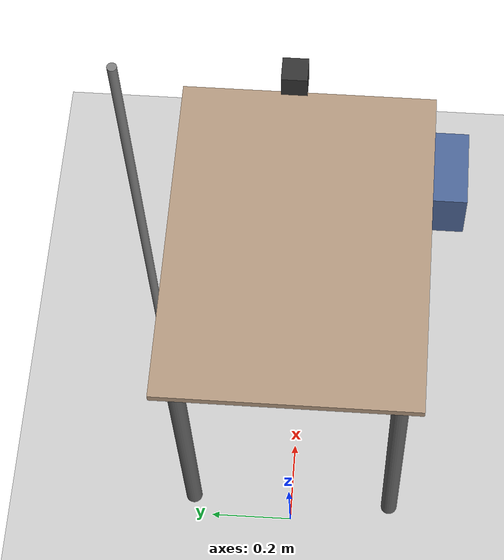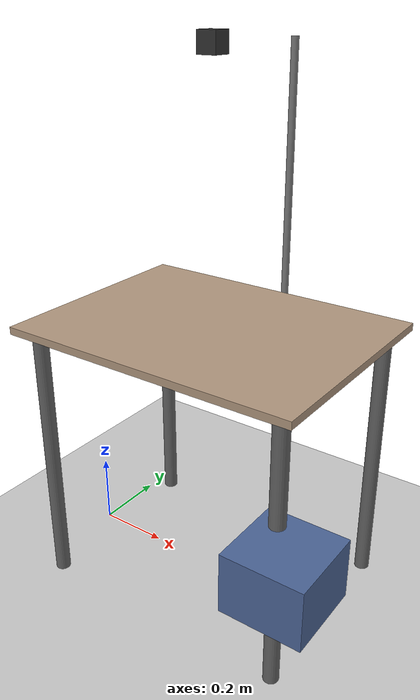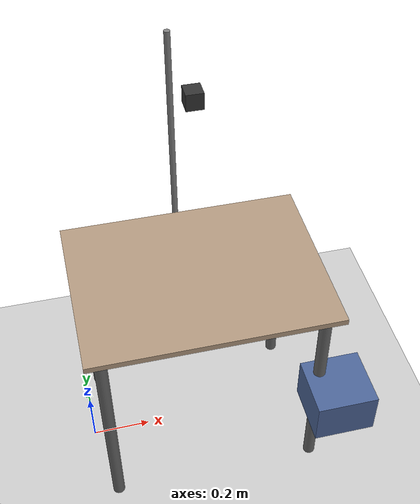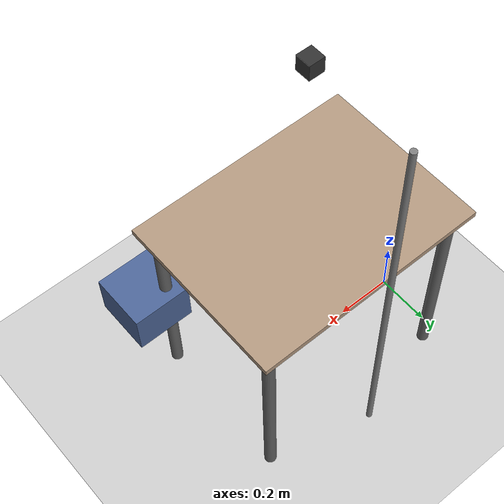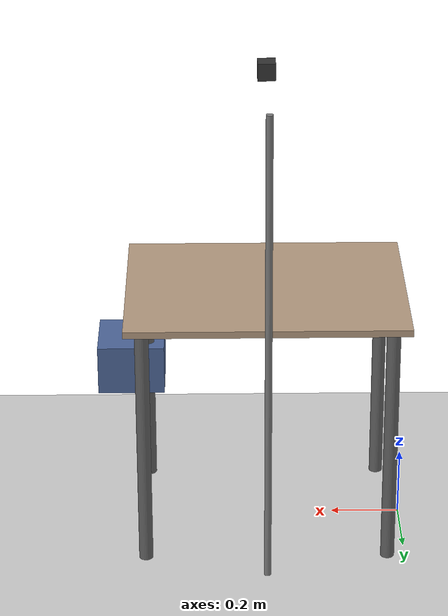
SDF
<?xml version="1.0" ?>
<sdf version="1.6">
  <world name="desk_world">

    <!-- Physics -->
    <physics type="ode">
      <max_step_size>0.001</max_step_size>
      <real_time_factor>1</real_time_factor>
      <real_time_update_rate>1000</real_time_update_rate>
    </physics>

    <!-- Lighting -->
    <include>
      <uri>model://sun</uri>
    </include>

    <!-- Ground plane -->
    <include>
      <uri>model://ground_plane</uri>
    </include>

    <!-- Desk: 80cm x 60cm surface, 75cm tall, 2cm thick top -->
    <model name="desk">
      <static>true</static>
      <pose>0.4 0 0 0 0 0</pose>

      <!-- Table top -->
      <link name="table_top">
        <pose>0 0 0.74 0 0 0</pose>
        <collision name="top_collision">
          <geometry>
            <box>
              <size>0.80 0.60 0.02</size>
            </box>
          </geometry>
        </collision>
        <visual name="top_visual">
          <geometry>
            <box>
              <size>0.80 0.60 0.02</size>
            </box>
          </geometry>
          <material>
            <ambient>0.6 0.5 0.4 1</ambient>
            <diffuse>0.7 0.6 0.5 1</diffuse>
            <specular>0.2 0.2 0.2 1</specular>
          </material>
        </visual>
      </link>

      <!-- Front-left leg -->
      <link name="leg_fl">
        <pose>-0.35 0.25 0.365 0 0 0</pose>
        <collision name="collision">
          <geometry>
            <cylinder>
              <radius>0.02</radius>
              <length>0.73</length>
            </cylinder>
          </geometry>
        </collision>
        <visual name="visual">
          <geometry>
            <cylinder>
              <radius>0.02</radius>
              <length>0.73</length>
            </cylinder>
          </geometry>
          <material>
            <ambient>0.3 0.3 0.3 1</ambient>
            <diffuse>0.4 0.4 0.4 1</diffuse>
          </material>
        </visual>
      </link>

      <!-- Front-right leg -->
      <link name="leg_fr">
        <pose>-0.35 -0.25 0.365 0 0 0</pose>
        <collision name="collision">
          <geometry>
            <cylinder>
              <radius>0.02</radius>
              <length>0.73</length>
            </cylinder>
          </geometry>
        </collision>
        <visual name="visual">
          <geometry>
            <cylinder>
              <radius>0.02</radius>
              <length>0.73</length>
            </cylinder>
          </geometry>
          <material>
            <ambient>0.3 0.3 0.3 1</ambient>
            <diffuse>0.4 0.4 0.4 1</diffuse>
          </material>
        </visual>
      </link>

      <!-- Back-left leg -->
      <link name="leg_bl">
        <pose>0.35 0.25 0.365 0 0 0</pose>
        <collision name="collision">
          <geometry>
            <cylinder>
              <radius>0.02</radius>
              <length>0.73</length>
            </cylinder>
          </geometry>
        </collision>
        <visual name="visual">
          <geometry>
            <cylinder>
              <radius>0.02</radius>
              <length>0.73</length>
            </cylinder>
          </geometry>
          <material>
            <ambient>0.3 0.3 0.3 1</ambient>
            <diffuse>0.4 0.4 0.4 1</diffuse>
          </material>
        </visual>
      </link>

      <!-- Back-right leg -->
      <link name="leg_br">
        <pose>0.35 -0.25 0.365 0 0 0</pose>
        <collision name="collision">
          <geometry>
            <cylinder>
              <radius>0.02</radius>
              <length>0.73</length>
            </cylinder>
          </geometry>
        </collision>
        <visual name="visual">
          <geometry>
            <cylinder>
              <radius>0.02</radius>
              <length>0.73</length>
            </cylinder>
          </geometry>
          <material>
            <ambient>0.3 0.3 0.3 1</ambient>
            <diffuse>0.4 0.4 0.4 1</diffuse>
          </material>
        </visual>
      </link>

      <!-- Fixed joints to connect legs to top -->
      <joint name="joint_fl" type="fixed">
        <parent>table_top</parent>
        <child>leg_fl</child>
      </joint>
      <joint name="joint_fr" type="fixed">
        <parent>table_top</parent>
        <child>leg_fr</child>
      </joint>
      <joint name="joint_bl" type="fixed">
        <parent>table_top</parent>
        <child>leg_bl</child>
      </joint>
      <joint name="joint_br" type="fixed">
        <parent>table_top</parent>
        <child>leg_br</child>
      </joint>
    </model>

    <!-- Bin/tray next to the desk (where objects get placed) -->
    <model name="bin">
      <static>true</static>
      <pose>0.8 -0.3 0.375 0 0 0</pose>
      <link name="bin_body">
        <collision name="collision">
          <geometry>
            <box>
              <size>0.20 0.20 0.15</size>
            </box>
          </geometry>
        </collision>
        <visual name="visual">
          <geometry>
            <box>
              <size>0.20 0.20 0.15</size>
            </box>
          </geometry>
          <material>
            <ambient>0.2 0.3 0.5 1</ambient>
            <diffuse>0.3 0.4 0.6 1</diffuse>
          </material>
        </visual>
      </link>
    </model>

    <!-- Overhead camera looking down at the desk -->
    <model name="overhead_camera">
      <static>true</static>
      <pose>0.4 0 1.4 0 1.5708 0</pose>
      <link name="camera_link">
        <sensor name="desk_camera" type="camera">
          <update_rate>10</update_rate>
          <camera>
            <horizontal_fov>1.047</horizontal_fov>
            <image>
              <width>640</width>
              <height>480</height>
              <format>R8G8B8</format>
            </image>
            <clip>
              <near>0.1</near>
              <far>5.0</far>
            </clip>
          </camera>
          <plugin name="camera_controller" filename="libgazebo_ros_camera.so">
            <ros>
              <remapping>~/image_raw:=/camera/image_raw</remapping>
              <remapping>~/camera_info:=/camera/camera_info</remapping>
            </ros>
            <camera_name>desk_camera</camera_name>
            <frame_name>camera_link</frame_name>
          </plugin>
        </sensor>
        <visual name="camera_visual">
          <geometry>
            <box>
              <size>0.05 0.05 0.05</size>
            </box>
          </geometry>
          <material>
            <ambient>0.1 0.1 0.1 1</ambient>
            <diffuse>0.2 0.2 0.2 1</diffuse>
          </material>
        </visual>
      </link>
    </model>

    <!-- Camera mount (visual only - thin pole) -->
    <model name="camera_mount">
      <static>true</static>
      <pose>0.4 0.35 0.7 0 0 0</pose>
      <link name="pole">
        <visual name="visual">
          <geometry>
            <cylinder>
              <radius>0.01</radius>
              <length>1.4</length>
            </cylinder>
          </geometry>
          <material>
            <ambient>0.3 0.3 0.3 1</ambient>
            <diffuse>0.5 0.5 0.5 1</diffuse>
          </material>
        </visual>
      </link>
    </model>

  </world>
</sdf>
